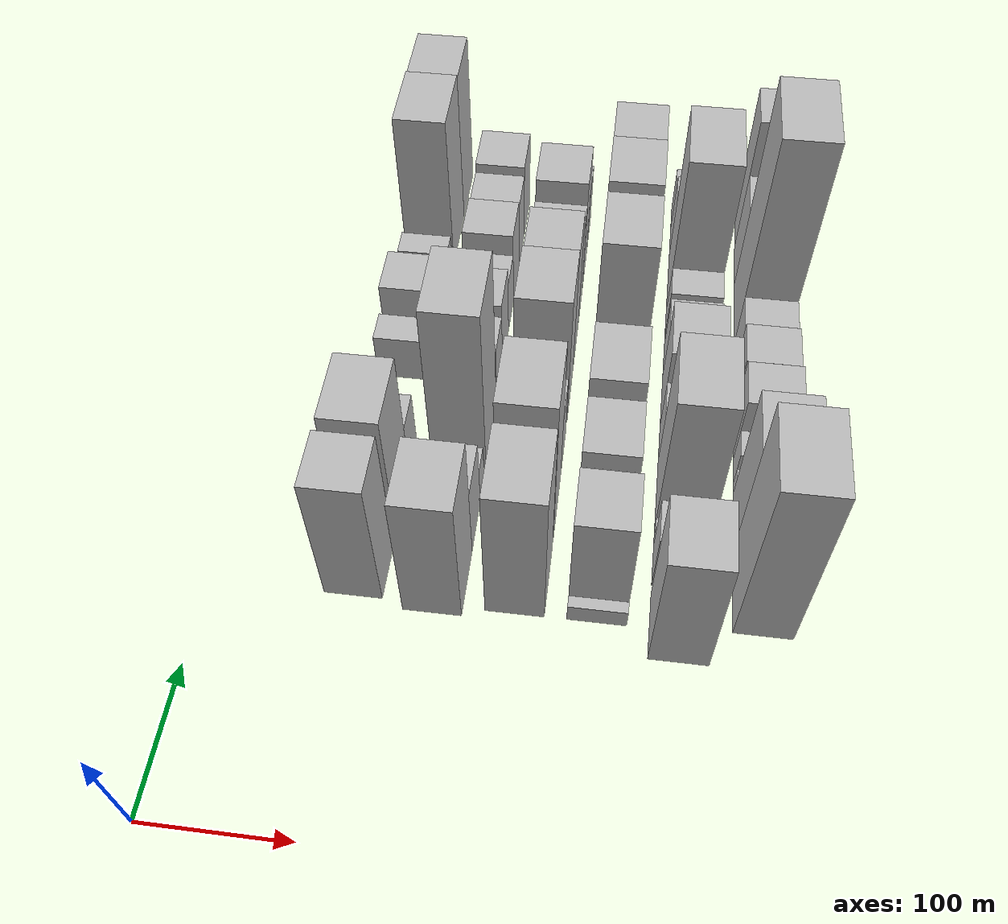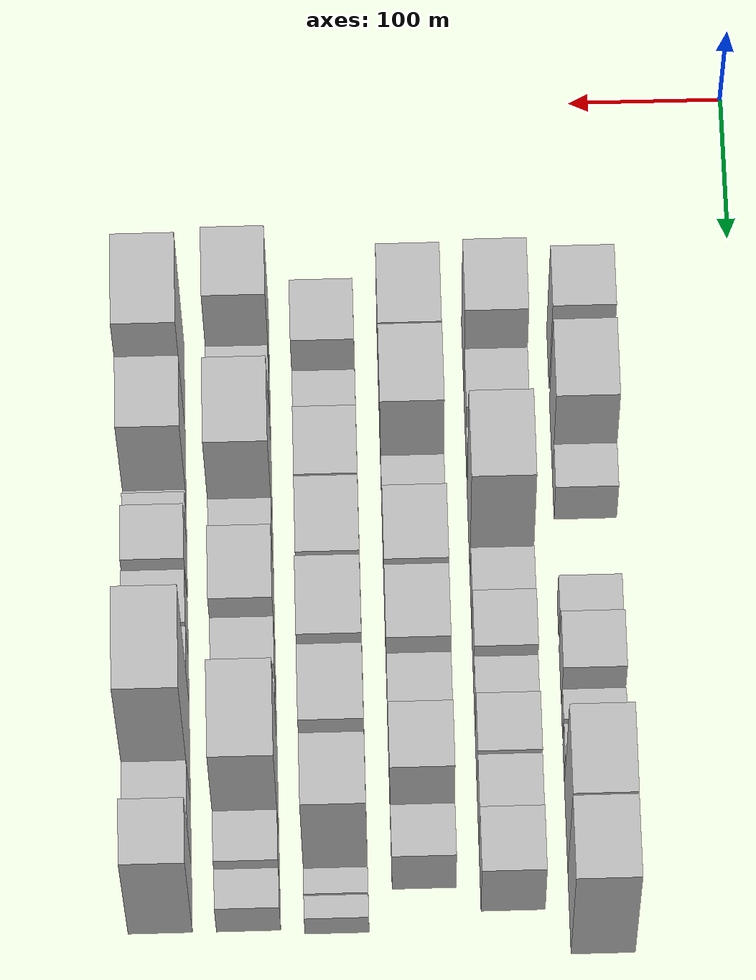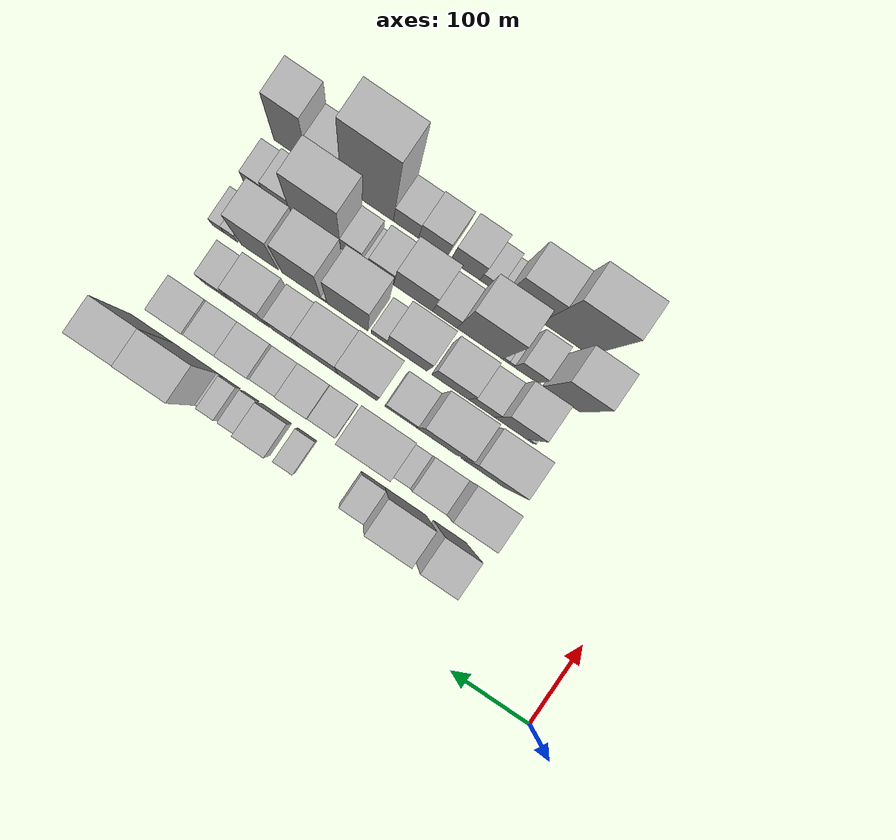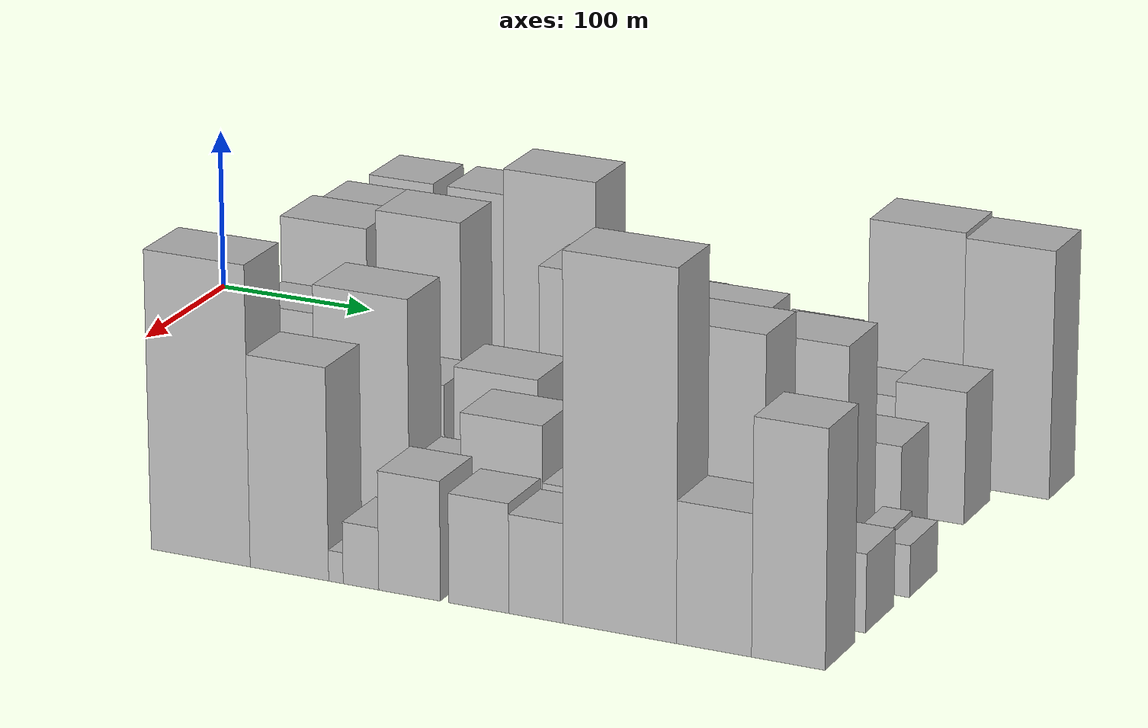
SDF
<sdf version="1.6">
 <world name="default">
  <model name="building_29">
   <static>1</static>
   <pose>100.0000 182.6513 0 0.000000 0.000000 0.000000</pose>
   <link name="link">
    <pose>0 0 66.00 0 0 0</pose>
    <collision name="collision"><geometry><box><size>40.0000 41.2226 132.0000</size></box></geometry></collision>
    <visual name="visual">
     <cast_shadows>0</cast_shadows>
     <geometry><box><size>40.0000 41.2226 132.0000</size></box></geometry>
     <material>
      <script>
       <uri>model://HANNAS_wall/materials/scripts</uri>
       <uri>model://HANNAS_wall/materials/textures</uri>
       <name>vrc/HANNAS_wall</name>
      </script>
     </material>
    </visual>
   </link>
  </model>
  <model name="building_30">
   <static>1</static>
   <pose>100.0000 238.4440 0 0.000000 0.000000 0.000000</pose>
   <link name="link">
    <pose>0 0 66.00 0 0 0</pose>
    <collision name="collision"><geometry><box><size>40.0000 52.3628 132.0000</size></box></geometry></collision>
    <visual name="visual">
     <cast_shadows>0</cast_shadows>
     <geometry><box><size>40.0000 52.3628 132.0000</size></box></geometry>
     <material>
      <script>
       <uri>model://HANNAS_wall/materials/scripts</uri>
       <uri>model://HANNAS_wall/materials/textures</uri>
       <name>vrc/HANNAS_wall</name>
      </script>
     </material>
    </visual>
   </link>
  </model>
  <model name="building_31">
   <static>1</static>
   <pose>100.0000 279.4099 0 0.000000 0.000000 0.000000</pose>
   <link name="link">
    <pose>0 0 27.00 0 0 0</pose>
    <collision name="collision"><geometry><box><size>40.0000 29.5690 54.0000</size></box></geometry></collision>
    <visual name="visual">
     <cast_shadows>0</cast_shadows>
     <geometry><box><size>40.0000 29.5690 54.0000</size></box></geometry>
     <material>
      <script>
       <uri>model://HANNAS_wall/materials/scripts</uri>
       <uri>model://HANNAS_wall/materials/textures</uri>
       <name>vrc/HANNAS_wall</name>
      </script>
     </material>
    </visual>
   </link>
  </model>
  <model name="building_32">
   <static>1</static>
   <pose>100.0000 362.4046 0 0.000000 0.000000 0.000000</pose>
   <link name="link">
    <pose>0 0 22.50 0 0 0</pose>
    <collision name="collision"><geometry><box><size>40.0000 24.1402 45.0000</size></box></geometry></collision>
    <visual name="visual">
     <cast_shadows>0</cast_shadows>
     <geometry><box><size>40.0000 24.1402 45.0000</size></box></geometry>
     <material>
      <script>
       <uri>model://HANNAS_wall/materials/scripts</uri>
       <uri>model://HANNAS_wall/materials/textures</uri>
       <name>vrc/HANNAS_wall</name>
      </script>
     </material>
    </visual>
   </link>
  </model>
  <model name="building_33">
   <static>1</static>
   <pose>100.0000 401.4034 0 0.000000 0.000000 0.000000</pose>
   <link name="link">
    <pose>0 0 33.00 0 0 0</pose>
    <collision name="collision"><geometry><box><size>40.0000 37.8573 66.0000</size></box></geometry></collision>
    <visual name="visual">
     <cast_shadows>0</cast_shadows>
     <geometry><box><size>40.0000 37.8573 66.0000</size></box></geometry>
     <material>
      <script>
       <uri>model://HANNAS_wall/materials/scripts</uri>
       <uri>model://HANNAS_wall/materials/textures</uri>
       <name>vrc/HANNAS_wall</name>
      </script>
     </material>
    </visual>
   </link>
  </model>
  <model name="building_34">
   <static>1</static>
   <pose>100.0000 433.3252 0 0.000000 0.000000 0.000000</pose>
   <link name="link">
    <pose>0 0 18.00 0 0 0</pose>
    <collision name="collision"><geometry><box><size>40.0000 19.9862 36.0000</size></box></geometry></collision>
    <visual name="visual">
     <cast_shadows>0</cast_shadows>
     <geometry><box><size>40.0000 19.9862 36.0000</size></box></geometry>
     <material>
      <script>
       <uri>model://HANNAS_wall/materials/scripts</uri>
       <uri>model://HANNAS_wall/materials/textures</uri>
       <name>vrc/HANNAS_wall</name>
      </script>
     </material>
    </visual>
   </link>
  </model>
  <model name="building_35">
   <static>1</static>
   <pose>100.0000 457.9261 0 0.000000 0.000000 0.000000</pose>
   <link name="link">
    <pose>0 0 19.50 0 0 0</pose>
    <collision name="collision"><geometry><box><size>40.0000 21.2158 39.0000</size></box></geometry></collision>
    <visual name="visual">
     <cast_shadows>0</cast_shadows>
     <geometry><box><size>40.0000 21.2158 39.0000</size></box></geometry>
     <material>
      <script>
       <uri>model://HANNAS_wall/materials/scripts</uri>
       <uri>model://HANNAS_wall/materials/textures</uri>
       <name>vrc/HANNAS_wall</name>
      </script>
     </material>
    </visual>
   </link>
  </model>
  <model name="building_36">
   <static>1</static>
   <pose>100.0000 471.7469 0 0.000000 0.000000 0.000000</pose>
   <link name="link">
    <pose>0 0 7.50 0 0 0</pose>
    <collision name="collision"><geometry><box><size>40.0000 6.4258 15.0000</size></box></geometry></collision>
    <visual name="visual">
     <cast_shadows>0</cast_shadows>
     <geometry><box><size>40.0000 6.4258 15.0000</size></box></geometry>
     <material>
      <script>
       <uri>model://HANNAS_wall/materials/scripts</uri>
       <uri>model://HANNAS_wall/materials/textures</uri>
       <name>vrc/HANNAS_wall</name>
      </script>
     </material>
    </visual>
   </link>
  </model>
  <model name="building_37">
   <static>1</static>
   <pose>100.0000 503.7279 0 0.000000 0.000000 0.000000</pose>
   <link name="link">
    <pose>0 0 75.00 0 0 0</pose>
    <collision name="collision"><geometry><box><size>40.0000 57.5362 150.0000</size></box></geometry></collision>
    <visual name="visual">
     <cast_shadows>0</cast_shadows>
     <geometry><box><size>40.0000 57.5362 150.0000</size></box></geometry>
     <material>
      <script>
       <uri>model://HANNAS_wall/materials/scripts</uri>
       <uri>model://HANNAS_wall/materials/textures</uri>
       <name>vrc/HANNAS_wall</name>
      </script>
     </material>
    </visual>
   </link>
  </model>
  <model name="building_38">
   <static>1</static>
   <pose>100.0000 559.0571 0 0.000000 0.000000 0.000000</pose>
   <link name="link">
    <pose>0 0 73.50 0 0 0</pose>
    <collision name="collision"><geometry><box><size>40.0000 53.1222 147.0000</size></box></geometry></collision>
    <visual name="visual">
     <cast_shadows>0</cast_shadows>
     <geometry><box><size>40.0000 53.1222 147.0000</size></box></geometry>
     <material>
      <script>
       <uri>model://HANNAS_wall/materials/scripts</uri>
       <uri>model://HANNAS_wall/materials/textures</uri>
       <name>vrc/HANNAS_wall</name>
      </script>
     </material>
    </visual>
   </link>
  </model>
  <model name="building_80">
   <static>1</static>
   <pose>155.0000 180.3784 0 0.000000 0.000000 0.000000</pose>
   <link name="link">
    <pose>0 0 66.00 0 0 0</pose>
    <collision name="collision"><geometry><box><size>40.0000 49.0575 132.0000</size></box></geometry></collision>
    <visual name="visual">
     <cast_shadows>0</cast_shadows>
     <geometry><box><size>40.0000 49.0575 132.0000</size></box></geometry>
     <material>
      <script>
       <uri>model://HANNAS_wall/materials/scripts</uri>
       <uri>model://HANNAS_wall/materials/textures</uri>
       <name>vrc/HANNAS_wall</name>
      </script>
     </material>
    </visual>
   </link>
  </model>
  <model name="building_81">
   <static>1</static>
   <pose>155.0000 224.9658 0 0.000000 0.000000 0.000000</pose>
   <link name="link">
    <pose>0 0 36.00 0 0 0</pose>
    <collision name="collision"><geometry><box><size>40.0000 40.1173 72.0000</size></box></geometry></collision>
    <visual name="visual">
     <cast_shadows>0</cast_shadows>
     <geometry><box><size>40.0000 40.1173 72.0000</size></box></geometry>
     <material>
      <script>
       <uri>model://HANNAS_wall/materials/scripts</uri>
       <uri>model://HANNAS_wall/materials/textures</uri>
       <name>vrc/HANNAS_wall</name>
      </script>
     </material>
    </visual>
   </link>
  </model>
  <model name="building_82">
   <static>1</static>
   <pose>155.0000 255.2848 0 0.000000 0.000000 0.000000</pose>
   <link name="link">
    <pose>0 0 19.50 0 0 0</pose>
    <collision name="collision"><geometry><box><size>40.0000 20.5206 39.0000</size></box></geometry></collision>
    <visual name="visual">
     <cast_shadows>0</cast_shadows>
     <geometry><box><size>40.0000 20.5206 39.0000</size></box></geometry>
     <material>
      <script>
       <uri>model://HANNAS_wall/materials/scripts</uri>
       <uri>model://HANNAS_wall/materials/textures</uri>
       <name>vrc/HANNAS_wall</name>
      </script>
     </material>
    </visual>
   </link>
  </model>
  <model name="building_83">
   <static>1</static>
   <pose>155.0000 303.1999 0 0.000000 0.000000 0.000000</pose>
   <link name="link">
    <pose>0 0 84.00 0 0 0</pose>
    <collision name="collision"><geometry><box><size>40.0000 57.3095 168.0000</size></box></geometry></collision>
    <visual name="visual">
     <cast_shadows>0</cast_shadows>
     <geometry><box><size>40.0000 57.3095 168.0000</size></box></geometry>
     <material>
      <script>
       <uri>model://HANNAS_wall/materials/scripts</uri>
       <uri>model://HANNAS_wall/materials/textures</uri>
       <name>vrc/HANNAS_wall</name>
      </script>
     </material>
    </visual>
   </link>
  </model>
  <model name="building_84">
   <static>1</static>
   <pose>155.0000 352.5197 0 0.000000 0.000000 0.000000</pose>
   <link name="link">
    <pose>0 0 30.00 0 0 0</pose>
    <collision name="collision"><geometry><box><size>40.0000 33.3301 60.0000</size></box></geometry></collision>
    <visual name="visual">
     <cast_shadows>0</cast_shadows>
     <geometry><box><size>40.0000 33.3301 60.0000</size></box></geometry>
     <material>
      <script>
       <uri>model://HANNAS_wall/materials/scripts</uri>
       <uri>model://HANNAS_wall/materials/textures</uri>
       <name>vrc/HANNAS_wall</name>
      </script>
     </material>
    </visual>
   </link>
  </model>
  <model name="building_85">
   <static>1</static>
   <pose>155.0000 387.9187 0 0.000000 0.000000 0.000000</pose>
   <link name="link">
    <pose>0 0 36.00 0 0 0</pose>
    <collision name="collision"><geometry><box><size>40.0000 37.4679 72.0000</size></box></geometry></collision>
    <visual name="visual">
     <cast_shadows>0</cast_shadows>
     <geometry><box><size>40.0000 37.4679 72.0000</size></box></geometry>
     <material>
      <script>
       <uri>model://HANNAS_wall/materials/scripts</uri>
       <uri>model://HANNAS_wall/materials/textures</uri>
       <name>vrc/HANNAS_wall</name>
      </script>
     </material>
    </visual>
   </link>
  </model>
  <model name="building_86">
   <static>1</static>
   <pose>155.0000 422.6817 0 0.000000 0.000000 0.000000</pose>
   <link name="link">
    <pose>0 0 27.00 0 0 0</pose>
    <collision name="collision"><geometry><box><size>40.0000 32.0579 54.0000</size></box></geometry></collision>
    <visual name="visual">
     <cast_shadows>0</cast_shadows>
     <geometry><box><size>40.0000 32.0579 54.0000</size></box></geometry>
     <material>
      <script>
       <uri>model://HANNAS_wall/materials/scripts</uri>
       <uri>model://HANNAS_wall/materials/textures</uri>
       <name>vrc/HANNAS_wall</name>
      </script>
     </material>
    </visual>
   </link>
  </model>
  <model name="building_87">
   <static>1</static>
   <pose>155.0000 457.7955 0 0.000000 0.000000 0.000000</pose>
   <link name="link">
    <pose>0 0 37.50 0 0 0</pose>
    <collision name="collision"><geometry><box><size>40.0000 38.1696 75.0000</size></box></geometry></collision>
    <visual name="visual">
     <cast_shadows>0</cast_shadows>
     <geometry><box><size>40.0000 38.1696 75.0000</size></box></geometry>
     <material>
      <script>
       <uri>model://HANNAS_wall/materials/scripts</uri>
       <uri>model://HANNAS_wall/materials/textures</uri>
       <name>vrc/HANNAS_wall</name>
      </script>
     </material>
    </visual>
   </link>
  </model>
  <model name="building_88">
   <static>1</static>
   <pose>155.0000 495.5452 0 0.000000 0.000000 0.000000</pose>
   <link name="link">
    <pose>0 0 34.50 0 0 0</pose>
    <collision name="collision"><geometry><box><size>40.0000 37.3299 69.0000</size></box></geometry></collision>
    <visual name="visual">
     <cast_shadows>0</cast_shadows>
     <geometry><box><size>40.0000 37.3299 69.0000</size></box></geometry>
     <material>
      <script>
       <uri>model://HANNAS_wall/materials/scripts</uri>
       <uri>model://HANNAS_wall/materials/textures</uri>
       <name>vrc/HANNAS_wall</name>
      </script>
     </material>
    </visual>
   </link>
  </model>
  <model name="building_89">
   <static>1</static>
   <pose>155.0000 535.1574 0 0.000000 0.000000 0.000000</pose>
   <link name="link">
    <pose>0 0 39.00 0 0 0</pose>
    <collision name="collision"><geometry><box><size>40.0000 41.8945 78.0000</size></box></geometry></collision>
    <visual name="visual">
     <cast_shadows>0</cast_shadows>
     <geometry><box><size>40.0000 41.8945 78.0000</size></box></geometry>
     <material>
      <script>
       <uri>model://HANNAS_wall/materials/scripts</uri>
       <uri>model://HANNAS_wall/materials/textures</uri>
       <name>vrc/HANNAS_wall</name>
      </script>
     </material>
    </visual>
   </link>
  </model>
  <model name="building_134">
   <static>1</static>
   <pose>210.0000 188.6467 0 0.000000 0.000000 0.000000</pose>
   <link name="link">
    <pose>0 0 70.50 0 0 0</pose>
    <collision name="collision"><geometry><box><size>40.0000 54.1470 141.0000</size></box></geometry></collision>
    <visual name="visual">
     <cast_shadows>0</cast_shadows>
     <geometry><box><size>40.0000 54.1470 141.0000</size></box></geometry>
     <material>
      <script>
       <uri>model://HANNAS_wall/materials/scripts</uri>
       <uri>model://HANNAS_wall/materials/textures</uri>
       <name>vrc/HANNAS_wall</name>
      </script>
     </material>
    </visual>
   </link>
  </model>
  <model name="building_135">
   <static>1</static>
   <pose>210.0000 247.9790 0 0.000000 0.000000 0.000000</pose>
   <link name="link">
    <pose>0 0 76.50 0 0 0</pose>
    <collision name="collision"><geometry><box><size>40.0000 52.5176 153.0000</size></box></geometry></collision>
    <visual name="visual">
     <cast_shadows>0</cast_shadows>
     <geometry><box><size>40.0000 52.5176 153.0000</size></box></geometry>
     <material>
      <script>
       <uri>model://HANNAS_wall/materials/scripts</uri>
       <uri>model://HANNAS_wall/materials/textures</uri>
       <name>vrc/HANNAS_wall</name>
      </script>
     </material>
    </visual>
   </link>
  </model>
  <model name="building_136">
   <static>1</static>
   <pose>210.0000 293.3767 0 0.000000 0.000000 0.000000</pose>
   <link name="link">
    <pose>0 0 33.00 0 0 0</pose>
    <collision name="collision"><geometry><box><size>40.0000 38.2777 66.0000</size></box></geometry></collision>
    <visual name="visual">
     <cast_shadows>0</cast_shadows>
     <geometry><box><size>40.0000 38.2777 66.0000</size></box></geometry>
     <material>
      <script>
       <uri>model://HANNAS_wall/materials/scripts</uri>
       <uri>model://HANNAS_wall/materials/textures</uri>
       <name>vrc/HANNAS_wall</name>
      </script>
     </material>
    </visual>
   </link>
  </model>
  <model name="building_137">
   <static>1</static>
   <pose>210.0000 347.0668 0 0.000000 0.000000 0.000000</pose>
   <link name="link">
    <pose>0 0 67.50 0 0 0</pose>
    <collision name="collision"><geometry><box><size>40.0000 49.1024 135.0000</size></box></geometry></collision>
    <visual name="visual">
     <cast_shadows>0</cast_shadows>
     <geometry><box><size>40.0000 49.1024 135.0000</size></box></geometry>
     <material>
      <script>
       <uri>model://HANNAS_wall/materials/scripts</uri>
       <uri>model://HANNAS_wall/materials/textures</uri>
       <name>vrc/HANNAS_wall</name>
      </script>
     </material>
    </visual>
   </link>
  </model>
  <model name="building_138">
   <static>1</static>
   <pose>210.0000 395.7343 0 0.000000 0.000000 0.000000</pose>
   <link name="link">
    <pose>0 0 63.00 0 0 0</pose>
    <collision name="collision"><geometry><box><size>40.0000 48.2325 126.0000</size></box></geometry></collision>
    <visual name="visual">
     <cast_shadows>0</cast_shadows>
     <geometry><box><size>40.0000 48.2325 126.0000</size></box></geometry>
     <material>
      <script>
       <uri>model://HANNAS_wall/materials/scripts</uri>
       <uri>model://HANNAS_wall/materials/textures</uri>
       <name>vrc/HANNAS_wall</name>
      </script>
     </material>
    </visual>
   </link>
  </model>
  <model name="building_139">
   <static>1</static>
   <pose>210.0000 437.0793 0 0.000000 0.000000 0.000000</pose>
   <link name="link">
    <pose>0 0 49.50 0 0 0</pose>
    <collision name="collision"><geometry><box><size>40.0000 34.4576 99.0000</size></box></geometry></collision>
    <visual name="visual">
     <cast_shadows>0</cast_shadows>
     <geometry><box><size>40.0000 34.4576 99.0000</size></box></geometry>
     <material>
      <script>
       <uri>model://HANNAS_wall/materials/scripts</uri>
       <uri>model://HANNAS_wall/materials/textures</uri>
       <name>vrc/HANNAS_wall</name>
      </script>
     </material>
    </visual>
   </link>
  </model>
  <model name="building_140">
   <static>1</static>
   <pose>210.0000 479.7404 0 0.000000 0.000000 0.000000</pose>
   <link name="link">
    <pose>0 0 58.50 0 0 0</pose>
    <collision name="collision"><geometry><box><size>40.0000 42.8645 117.0000</size></box></geometry></collision>
    <visual name="visual">
     <cast_shadows>0</cast_shadows>
     <geometry><box><size>40.0000 42.8645 117.0000</size></box></geometry>
     <material>
      <script>
       <uri>model://HANNAS_wall/materials/scripts</uri>
       <uri>model://HANNAS_wall/materials/textures</uri>
       <name>vrc/HANNAS_wall</name>
      </script>
     </material>
    </visual>
   </link>
  </model>
  <model name="building_141">
   <static>1</static>
   <pose>210.0000 523.1566 0 0.000000 0.000000 0.000000</pose>
   <link name="link">
    <pose>0 0 31.50 0 0 0</pose>
    <collision name="collision"><geometry><box><size>40.0000 33.9680 63.0000</size></box></geometry></collision>
    <visual name="visual">
     <cast_shadows>0</cast_shadows>
     <geometry><box><size>40.0000 33.9680 63.0000</size></box></geometry>
     <material>
      <script>
       <uri>model://HANNAS_wall/materials/scripts</uri>
       <uri>model://HANNAS_wall/materials/textures</uri>
       <name>vrc/HANNAS_wall</name>
      </script>
     </material>
    </visual>
   </link>
  </model>
  <model name="building_183">
   <static>1</static>
   <pose>265.0000 165.9304 0 0.000000 0.000000 0.000000</pose>
   <link name="link">
    <pose>0 0 9.00 0 0 0</pose>
    <collision name="collision"><geometry><box><size>40.0000 8.2415 18.0000</size></box></geometry></collision>
    <visual name="visual">
     <cast_shadows>0</cast_shadows>
     <geometry><box><size>40.0000 8.2415 18.0000</size></box></geometry>
     <material>
      <script>
       <uri>model://HANNAS_wall/materials/scripts</uri>
       <uri>model://HANNAS_wall/materials/textures</uri>
       <name>vrc/HANNAS_wall</name>
      </script>
     </material>
    </visual>
   </link>
  </model>
  <model name="building_184">
   <static>1</static>
   <pose>265.0000 190.9765 0 0.000000 0.000000 0.000000</pose>
   <link name="link">
    <pose>0 0 54.00 0 0 0</pose>
    <collision name="collision"><geometry><box><size>40.0000 41.8508 108.0000</size></box></geometry></collision>
    <visual name="visual">
     <cast_shadows>0</cast_shadows>
     <geometry><box><size>40.0000 41.8508 108.0000</size></box></geometry>
     <material>
      <script>
       <uri>model://HANNAS_wall/materials/scripts</uri>
       <uri>model://HANNAS_wall/materials/textures</uri>
       <name>vrc/HANNAS_wall</name>
      </script>
     </material>
    </visual>
   </link>
  </model>
  <model name="building_185">
   <static>1</static>
   <pose>265.0000 228.0065 0 0.000000 0.000000 0.000000</pose>
   <link name="link">
    <pose>0 0 30.00 0 0 0</pose>
    <collision name="collision"><geometry><box><size>40.0000 32.2093 60.0000</size></box></geometry></collision>
    <visual name="visual">
     <cast_shadows>0</cast_shadows>
     <geometry><box><size>40.0000 32.2093 60.0000</size></box></geometry>
     <material>
      <script>
       <uri>model://HANNAS_wall/materials/scripts</uri>
       <uri>model://HANNAS_wall/materials/textures</uri>
       <name>vrc/HANNAS_wall</name>
      </script>
     </material>
    </visual>
   </link>
  </model>
  <model name="building_186">
   <static>1</static>
   <pose>265.0000 267.2944 0 0.000000 0.000000 0.000000</pose>
   <link name="link">
    <pose>0 0 39.00 0 0 0</pose>
    <collision name="collision"><geometry><box><size>40.0000 46.3664 78.0000</size></box></geometry></collision>
    <visual name="visual">
     <cast_shadows>0</cast_shadows>
     <geometry><box><size>40.0000 46.3664 78.0000</size></box></geometry>
     <material>
      <script>
       <uri>model://HANNAS_wall/materials/scripts</uri>
       <uri>model://HANNAS_wall/materials/textures</uri>
       <name>vrc/HANNAS_wall</name>
      </script>
     </material>
    </visual>
   </link>
  </model>
  <model name="building_187">
   <static>1</static>
   <pose>265.0000 321.9977 0 0.000000 0.000000 0.000000</pose>
   <link name="link">
    <pose>0 0 45.00 0 0 0</pose>
    <collision name="collision"><geometry><box><size>40.0000 51.0403 90.0000</size></box></geometry></collision>
    <visual name="visual">
     <cast_shadows>0</cast_shadows>
     <geometry><box><size>40.0000 51.0403 90.0000</size></box></geometry>
     <material>
      <script>
       <uri>model://HANNAS_wall/materials/scripts</uri>
       <uri>model://HANNAS_wall/materials/textures</uri>
       <name>vrc/HANNAS_wall</name>
      </script>
     </material>
    </visual>
   </link>
  </model>
  <model name="building_188">
   <static>1</static>
   <pose>265.0000 357.4154 0 0.000000 0.000000 0.000000</pose>
   <link name="link">
    <pose>0 0 16.50 0 0 0</pose>
    <collision name="collision"><geometry><box><size>40.0000 19.7951 33.0000</size></box></geometry></collision>
    <visual name="visual">
     <cast_shadows>0</cast_shadows>
     <geometry><box><size>40.0000 19.7951 33.0000</size></box></geometry>
     <material>
      <script>
       <uri>model://HANNAS_wall/materials/scripts</uri>
       <uri>model://HANNAS_wall/materials/textures</uri>
       <name>vrc/HANNAS_wall</name>
      </script>
     </material>
    </visual>
   </link>
  </model>
  <model name="building_189">
   <static>1</static>
   <pose>265.0000 397.1421 0 0.000000 0.000000 0.000000</pose>
   <link name="link">
    <pose>0 0 72.00 0 0 0</pose>
    <collision name="collision"><geometry><box><size>40.0000 51.6582 144.0000</size></box></geometry></collision>
    <visual name="visual">
     <cast_shadows>0</cast_shadows>
     <geometry><box><size>40.0000 51.6582 144.0000</size></box></geometry>
     <material>
      <script>
       <uri>model://HANNAS_wall/materials/scripts</uri>
       <uri>model://HANNAS_wall/materials/textures</uri>
       <name>vrc/HANNAS_wall</name>
      </script>
     </material>
    </visual>
   </link>
  </model>
  <model name="building_190">
   <static>1</static>
   <pose>265.0000 426.6786 0 0.000000 0.000000 0.000000</pose>
   <link name="link">
    <pose>0 0 7.50 0 0 0</pose>
    <collision name="collision"><geometry><box><size>40.0000 7.4149 15.0000</size></box></geometry></collision>
    <visual name="visual">
     <cast_shadows>0</cast_shadows>
     <geometry><box><size>40.0000 7.4149 15.0000</size></box></geometry>
     <material>
      <script>
       <uri>model://HANNAS_wall/materials/scripts</uri>
       <uri>model://HANNAS_wall/materials/textures</uri>
       <name>vrc/HANNAS_wall</name>
      </script>
     </material>
    </visual>
   </link>
  </model>
  <model name="building_191">
   <static>1</static>
   <pose>265.0000 455.0282 0 0.000000 0.000000 0.000000</pose>
   <link name="link">
    <pose>0 0 73.50 0 0 0</pose>
    <collision name="collision"><geometry><box><size>40.0000 49.2842 147.0000</size></box></geometry></collision>
    <visual name="visual">
     <cast_shadows>0</cast_shadows>
     <geometry><box><size>40.0000 49.2842 147.0000</size></box></geometry>
     <material>
      <script>
       <uri>model://HANNAS_wall/materials/scripts</uri>
       <uri>model://HANNAS_wall/materials/textures</uri>
       <name>vrc/HANNAS_wall</name>
      </script>
     </material>
    </visual>
   </link>
  </model>
  <model name="building_192">
   <static>1</static>
   <pose>265.0000 507.8073 0 0.000000 0.000000 0.000000</pose>
   <link name="link">
    <pose>0 0 69.00 0 0 0</pose>
    <collision name="collision"><geometry><box><size>40.0000 46.2741 138.0000</size></box></geometry></collision>
    <visual name="visual">
     <cast_shadows>0</cast_shadows>
     <geometry><box><size>40.0000 46.2741 138.0000</size></box></geometry>
     <material>
      <script>
       <uri>model://HANNAS_wall/materials/scripts</uri>
       <uri>model://HANNAS_wall/materials/textures</uri>
       <name>vrc/HANNAS_wall</name>
      </script>
     </material>
    </visual>
   </link>
  </model>
  <model name="building_193">
   <static>1</static>
   <pose>265.0000 544.3785 0 0.000000 0.000000 0.000000</pose>
   <link name="link">
    <pose>0 0 16.50 0 0 0</pose>
    <collision name="collision"><geometry><box><size>40.0000 16.8681 33.0000</size></box></geometry></collision>
    <visual name="visual">
     <cast_shadows>0</cast_shadows>
     <geometry><box><size>40.0000 16.8681 33.0000</size></box></geometry>
     <material>
      <script>
       <uri>model://HANNAS_wall/materials/scripts</uri>
       <uri>model://HANNAS_wall/materials/textures</uri>
       <name>vrc/HANNAS_wall</name>
      </script>
     </material>
    </visual>
   </link>
  </model>
  <model name="building_194">
   <static>1</static>
   <pose>265.0000 560.3866 0 0.000000 0.000000 0.000000</pose>
   <link name="link">
    <pose>0 0 15.00 0 0 0</pose>
    <collision name="collision"><geometry><box><size>40.0000 15.1481 30.0000</size></box></geometry></collision>
    <visual name="visual">
     <cast_shadows>0</cast_shadows>
     <geometry><box><size>40.0000 15.1481 30.0000</size></box></geometry>
     <material>
      <script>
       <uri>model://HANNAS_wall/materials/scripts</uri>
       <uri>model://HANNAS_wall/materials/textures</uri>
       <name>vrc/HANNAS_wall</name>
      </script>
     </material>
    </visual>
   </link>
  </model>
  <model name="building_237">
   <static>1</static>
   <pose>320.0000 163.7812 0 0.000000 0.000000 0.000000</pose>
   <link name="link">
    <pose>0 0 63.00 0 0 0</pose>
    <collision name="collision"><geometry><box><size>40.0000 47.3652 126.0000</size></box></geometry></collision>
    <visual name="visual">
     <cast_shadows>0</cast_shadows>
     <geometry><box><size>40.0000 47.3652 126.0000</size></box></geometry>
     <material>
      <script>
       <uri>model://HANNAS_wall/materials/scripts</uri>
       <uri>model://HANNAS_wall/materials/textures</uri>
       <name>vrc/HANNAS_wall</name>
      </script>
     </material>
    </visual>
   </link>
  </model>
  <model name="building_238">
   <static>1</static>
   <pose>320.0000 209.0367 0 0.000000 0.000000 0.000000</pose>
   <link name="link">
    <pose>0 0 30.00 0 0 0</pose>
    <collision name="collision"><geometry><box><size>40.0000 31.1458 60.0000</size></box></geometry></collision>
    <visual name="visual">
     <cast_shadows>0</cast_shadows>
     <geometry><box><size>40.0000 31.1458 60.0000</size></box></geometry>
     <material>
      <script>
       <uri>model://HANNAS_wall/materials/scripts</uri>
       <uri>model://HANNAS_wall/materials/textures</uri>
       <name>vrc/HANNAS_wall</name>
      </script>
     </material>
    </visual>
   </link>
  </model>
  <model name="building_239">
   <static>1</static>
   <pose>320.0000 227.9524 0 0.000000 0.000000 0.000000</pose>
   <link name="link">
    <pose>0 0 7.50 0 0 0</pose>
    <collision name="collision"><geometry><box><size>40.0000 6.6857 15.0000</size></box></geometry></collision>
    <visual name="visual">
     <cast_shadows>0</cast_shadows>
     <geometry><box><size>40.0000 6.6857 15.0000</size></box></geometry>
     <material>
      <script>
       <uri>model://HANNAS_wall/materials/scripts</uri>
       <uri>model://HANNAS_wall/materials/textures</uri>
       <name>vrc/HANNAS_wall</name>
      </script>
     </material>
    </visual>
   </link>
  </model>
  <model name="building_240">
   <static>1</static>
   <pose>320.0000 234.9664 0 0.000000 0.000000 0.000000</pose>
   <link name="link">
    <pose>0 0 7.50 0 0 0</pose>
    <collision name="collision"><geometry><box><size>40.0000 7.3422 15.0000</size></box></geometry></collision>
    <visual name="visual">
     <cast_shadows>0</cast_shadows>
     <geometry><box><size>40.0000 7.3422 15.0000</size></box></geometry>
     <material>
      <script>
       <uri>model://HANNAS_wall/materials/scripts</uri>
       <uri>model://HANNAS_wall/materials/textures</uri>
       <name>vrc/HANNAS_wall</name>
      </script>
     </material>
    </visual>
   </link>
  </model>
  <model name="building_241">
   <static>1</static>
   <pose>320.0000 267.2886 0 0.000000 0.000000 0.000000</pose>
   <link name="link">
    <pose>0 0 73.50 0 0 0</pose>
    <collision name="collision"><geometry><box><size>40.0000 57.3022 147.0000</size></box></geometry></collision>
    <visual name="visual">
     <cast_shadows>0</cast_shadows>
     <geometry><box><size>40.0000 57.3022 147.0000</size></box></geometry>
     <material>
      <script>
       <uri>model://HANNAS_wall/materials/scripts</uri>
       <uri>model://HANNAS_wall/materials/textures</uri>
       <name>vrc/HANNAS_wall</name>
      </script>
     </material>
    </visual>
   </link>
  </model>
  <model name="building_242">
   <static>1</static>
   <pose>320.0000 311.6006 0 0.000000 0.000000 0.000000</pose>
   <link name="link">
    <pose>0 0 27.00 0 0 0</pose>
    <collision name="collision"><geometry><box><size>40.0000 31.3217 54.0000</size></box></geometry></collision>
    <visual name="visual">
     <cast_shadows>0</cast_shadows>
     <geometry><box><size>40.0000 31.3217 54.0000</size></box></geometry>
     <material>
      <script>
       <uri>model://HANNAS_wall/materials/scripts</uri>
       <uri>model://HANNAS_wall/materials/textures</uri>
       <name>vrc/HANNAS_wall</name>
      </script>
     </material>
    </visual>
   </link>
  </model>
  <model name="building_243">
   <static>1</static>
   <pose>320.0000 351.7039 0 0.000000 0.000000 0.000000</pose>
   <link name="link">
    <pose>0 0 43.50 0 0 0</pose>
    <collision name="collision"><geometry><box><size>40.0000 48.8849 87.0000</size></box></geometry></collision>
    <visual name="visual">
     <cast_shadows>0</cast_shadows>
     <geometry><box><size>40.0000 48.8849 87.0000</size></box></geometry>
     <material>
      <script>
       <uri>model://HANNAS_wall/materials/scripts</uri>
       <uri>model://HANNAS_wall/materials/textures</uri>
       <name>vrc/HANNAS_wall</name>
      </script>
     </material>
    </visual>
   </link>
  </model>
  <model name="building_244">
   <static>1</static>
   <pose>320.0000 392.2437 0 0.000000 0.000000 0.000000</pose>
   <link name="link">
    <pose>0 0 27.00 0 0 0</pose>
    <collision name="collision"><geometry><box><size>40.0000 32.1948 54.0000</size></box></geometry></collision>
    <visual name="visual">
     <cast_shadows>0</cast_shadows>
     <geometry><box><size>40.0000 32.1948 54.0000</size></box></geometry>
     <material>
      <script>
       <uri>model://HANNAS_wall/materials/scripts</uri>
       <uri>model://HANNAS_wall/materials/textures</uri>
       <name>vrc/HANNAS_wall</name>
      </script>
     </material>
    </visual>
   </link>
  </model>
  <model name="building_245">
   <static>1</static>
   <pose>320.0000 412.3570 0 0.000000 0.000000 0.000000</pose>
   <link name="link">
    <pose>0 0 9.00 0 0 0</pose>
    <collision name="collision"><geometry><box><size>40.0000 8.0317 18.0000</size></box></geometry></collision>
    <visual name="visual">
     <cast_shadows>0</cast_shadows>
     <geometry><box><size>40.0000 8.0317 18.0000</size></box></geometry>
     <material>
      <script>
       <uri>model://HANNAS_wall/materials/scripts</uri>
       <uri>model://HANNAS_wall/materials/textures</uri>
       <name>vrc/HANNAS_wall</name>
      </script>
     </material>
    </visual>
   </link>
  </model>
  <model name="building_246">
   <static>1</static>
   <pose>320.0000 429.8831 0 0.000000 0.000000 0.000000</pose>
   <link name="link">
    <pose>0 0 25.50 0 0 0</pose>
    <collision name="collision"><geometry><box><size>40.0000 27.0205 51.0000</size></box></geometry></collision>
    <visual name="visual">
     <cast_shadows>0</cast_shadows>
     <geometry><box><size>40.0000 27.0205 51.0000</size></box></geometry>
     <material>
      <script>
       <uri>model://HANNAS_wall/materials/scripts</uri>
       <uri>model://HANNAS_wall/materials/textures</uri>
       <name>vrc/HANNAS_wall</name>
      </script>
     </material>
    </visual>
   </link>
  </model>
  <model name="building_247">
   <static>1</static>
   <pose>320.0000 474.8219 0 0.000000 0.000000 0.000000</pose>
   <link name="link">
    <pose>0 0 79.50 0 0 0</pose>
    <collision name="collision"><geometry><box><size>40.0000 62.8571 159.0000</size></box></geometry></collision>
    <visual name="visual">
     <cast_shadows>0</cast_shadows>
     <geometry><box><size>40.0000 62.8571 159.0000</size></box></geometry>
     <material>
      <script>
       <uri>model://HANNAS_wall/materials/scripts</uri>
       <uri>model://HANNAS_wall/materials/textures</uri>
       <name>vrc/HANNAS_wall</name>
      </script>
     </material>
    </visual>
   </link>
  </model>
  <model name="building_248">
   <static>1</static>
   <pose>320.0000 522.6668 0 0.000000 0.000000 0.000000</pose>
   <link name="link">
    <pose>0 0 30.00 0 0 0</pose>
    <collision name="collision"><geometry><box><size>40.0000 32.8328 60.0000</size></box></geometry></collision>
    <visual name="visual">
     <cast_shadows>0</cast_shadows>
     <geometry><box><size>40.0000 32.8328 60.0000</size></box></geometry>
     <material>
      <script>
       <uri>model://HANNAS_wall/materials/scripts</uri>
       <uri>model://HANNAS_wall/materials/textures</uri>
       <name>vrc/HANNAS_wall</name>
      </script>
     </material>
    </visual>
   </link>
  </model>
  <model name="building_249">
   <static>1</static>
   <pose>320.0000 552.0601 0 0.000000 0.000000 0.000000</pose>
   <link name="link">
    <pose>0 0 22.50 0 0 0</pose>
    <collision name="collision"><geometry><box><size>40.0000 25.9537 45.0000</size></box></geometry></collision>
    <visual name="visual">
     <cast_shadows>0</cast_shadows>
     <geometry><box><size>40.0000 25.9537 45.0000</size></box></geometry>
     <material>
      <script>
       <uri>model://HANNAS_wall/materials/scripts</uri>
       <uri>model://HANNAS_wall/materials/textures</uri>
       <name>vrc/HANNAS_wall</name>
      </script>
     </material>
    </visual>
   </link>
  </model>
  <model name="building_295">
   <static>1</static>
   <pose>375.0000 195.7997 0 0.000000 0.000000 0.000000</pose>
   <link name="link">
    <pose>0 0 87.00 0 0 0</pose>
    <collision name="collision"><geometry><box><size>40.0000 61.1090 174.0000</size></box></geometry></collision>
    <visual name="visual">
     <cast_shadows>0</cast_shadows>
     <geometry><box><size>40.0000 61.1090 174.0000</size></box></geometry>
     <material>
      <script>
       <uri>model://HANNAS_wall/materials/scripts</uri>
       <uri>model://HANNAS_wall/materials/textures</uri>
       <name>vrc/HANNAS_wall</name>
      </script>
     </material>
    </visual>
   </link>
  </model>
  <model name="building_296">
   <static>1</static>
   <pose>375.0000 250.2949 0 0.000000 0.000000 0.000000</pose>
   <link name="link">
    <pose>0 0 61.50 0 0 0</pose>
    <collision name="collision"><geometry><box><size>40.0000 47.8816 123.0000</size></box></geometry></collision>
    <visual name="visual">
     <cast_shadows>0</cast_shadows>
     <geometry><box><size>40.0000 47.8816 123.0000</size></box></geometry>
     <material>
      <script>
       <uri>model://HANNAS_wall/materials/scripts</uri>
       <uri>model://HANNAS_wall/materials/textures</uri>
       <name>vrc/HANNAS_wall</name>
      </script>
     </material>
    </visual>
   </link>
  </model>
  <model name="building_297">
   <static>1</static>
   <pose>375.0000 278.6298 0 0.000000 0.000000 0.000000</pose>
   <link name="link">
    <pose>0 0 9.00 0 0 0</pose>
    <collision name="collision"><geometry><box><size>40.0000 8.7881 18.0000</size></box></geometry></collision>
    <visual name="visual">
     <cast_shadows>0</cast_shadows>
     <geometry><box><size>40.0000 8.7881 18.0000</size></box></geometry>
     <material>
      <script>
       <uri>model://HANNAS_wall/materials/scripts</uri>
       <uri>model://HANNAS_wall/materials/textures</uri>
       <name>vrc/HANNAS_wall</name>
      </script>
     </material>
    </visual>
   </link>
  </model>
  <model name="building_298">
   <static>1</static>
   <pose>375.0000 293.7967 0 0.000000 0.000000 0.000000</pose>
   <link name="link">
    <pose>0 0 18.00 0 0 0</pose>
    <collision name="collision"><geometry><box><size>40.0000 21.5457 36.0000</size></box></geometry></collision>
    <visual name="visual">
     <cast_shadows>0</cast_shadows>
     <geometry><box><size>40.0000 21.5457 36.0000</size></box></geometry>
     <material>
      <script>
       <uri>model://HANNAS_wall/materials/scripts</uri>
       <uri>model://HANNAS_wall/materials/textures</uri>
       <name>vrc/HANNAS_wall</name>
      </script>
     </material>
    </visual>
   </link>
  </model>
  <model name="building_299">
   <static>1</static>
   <pose>375.0000 323.0551 0 0.000000 0.000000 0.000000</pose>
   <link name="link">
    <pose>0 0 34.50 0 0 0</pose>
    <collision name="collision"><geometry><box><size>40.0000 36.9710 69.0000</size></box></geometry></collision>
    <visual name="visual">
     <cast_shadows>0</cast_shadows>
     <geometry><box><size>40.0000 36.9710 69.0000</size></box></geometry>
     <material>
      <script>
       <uri>model://HANNAS_wall/materials/scripts</uri>
       <uri>model://HANNAS_wall/materials/textures</uri>
       <name>vrc/HANNAS_wall</name>
      </script>
     </material>
    </visual>
   </link>
  </model>
  <model name="building_300">
   <static>1</static>
   <pose>375.0000 364.3466 0 0.000000 0.000000 0.000000</pose>
   <link name="link">
    <pose>0 0 31.50 0 0 0</pose>
    <collision name="collision"><geometry><box><size>40.0000 35.6120 63.0000</size></box></geometry></collision>
    <visual name="visual">
     <cast_shadows>0</cast_shadows>
     <geometry><box><size>40.0000 35.6120 63.0000</size></box></geometry>
     <material>
      <script>
       <uri>model://HANNAS_wall/materials/scripts</uri>
       <uri>model://HANNAS_wall/materials/textures</uri>
       <name>vrc/HANNAS_wall</name>
      </script>
     </material>
    </visual>
   </link>
  </model>
  <model name="building_301">
   <static>1</static>
   <pose>375.0000 398.1084 0 0.000000 0.000000 0.000000</pose>
   <link name="link">
    <pose>0 0 28.50 0 0 0</pose>
    <collision name="collision"><geometry><box><size>40.0000 31.9117 57.0000</size></box></geometry></collision>
    <visual name="visual">
     <cast_shadows>0</cast_shadows>
     <geometry><box><size>40.0000 31.9117 57.0000</size></box></geometry>
     <material>
      <script>
       <uri>model://HANNAS_wall/materials/scripts</uri>
       <uri>model://HANNAS_wall/materials/textures</uri>
       <name>vrc/HANNAS_wall</name>
      </script>
     </material>
    </visual>
   </link>
  </model>
  <model name="building_302">
   <static>1</static>
   <pose>375.0000 447.0168 0 0.000000 0.000000 0.000000</pose>
   <link name="link">
    <pose>0 0 105.00 0 0 0</pose>
    <collision name="collision"><geometry><box><size>40.0000 65.9051 210.0000</size></box></geometry></collision>
    <visual name="visual">
     <cast_shadows>0</cast_shadows>
     <geometry><box><size>40.0000 65.9051 210.0000</size></box></geometry>
     <material>
      <script>
       <uri>model://HANNAS_wall/materials/scripts</uri>
       <uri>model://HANNAS_wall/materials/textures</uri>
       <name>vrc/HANNAS_wall</name>
      </script>
     </material>
    </visual>
   </link>
  </model>
  <model name="building_303">
   <static>1</static>
   <pose>375.0000 501.5032 0 0.000000 0.000000 0.000000</pose>
   <link name="link">
    <pose>0 0 40.50 0 0 0</pose>
    <collision name="collision"><geometry><box><size>40.0000 43.0677 81.0000</size></box></geometry></collision>
    <visual name="visual">
     <cast_shadows>0</cast_shadows>
     <geometry><box><size>40.0000 43.0677 81.0000</size></box></geometry>
     <material>
      <script>
       <uri>model://HANNAS_wall/materials/scripts</uri>
       <uri>model://HANNAS_wall/materials/textures</uri>
       <name>vrc/HANNAS_wall</name>
      </script>
     </material>
    </visual>
   </link>
  </model>
  <model name="building_304">
   <static>1</static>
   <pose>375.0000 543.9749 0 0.000000 0.000000 0.000000</pose>
   <link name="link">
    <pose>0 0 67.50 0 0 0</pose>
    <collision name="collision"><geometry><box><size>40.0000 41.8756 135.0000</size></box></geometry></collision>
    <visual name="visual">
     <cast_shadows>0</cast_shadows>
     <geometry><box><size>40.0000 41.8756 135.0000</size></box></geometry>
     <material>
      <script>
       <uri>model://HANNAS_wall/materials/scripts</uri>
       <uri>model://HANNAS_wall/materials/textures</uri>
       <name>vrc/HANNAS_wall</name>
      </script>
     </material>
    </visual>
   </link>
  </model>
 </world>
</sdf>
